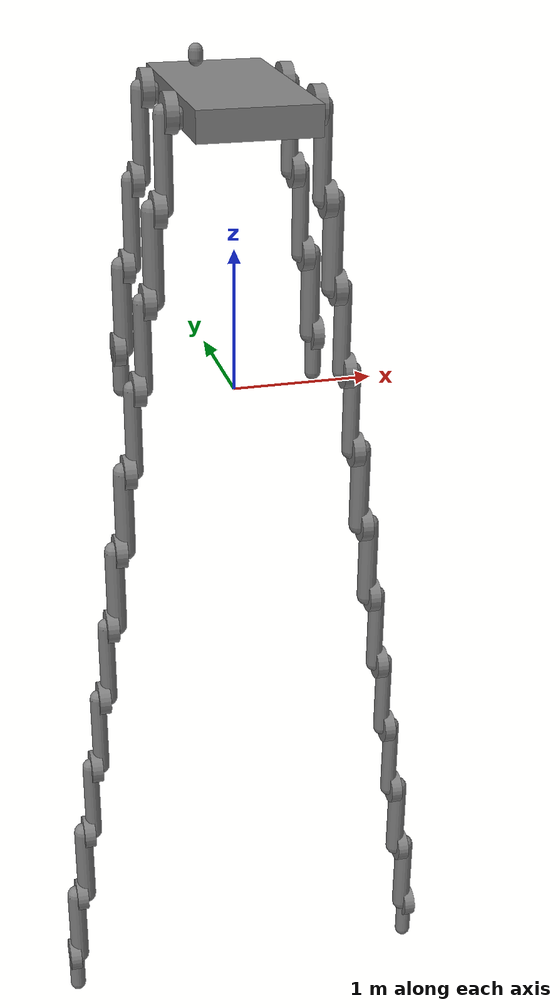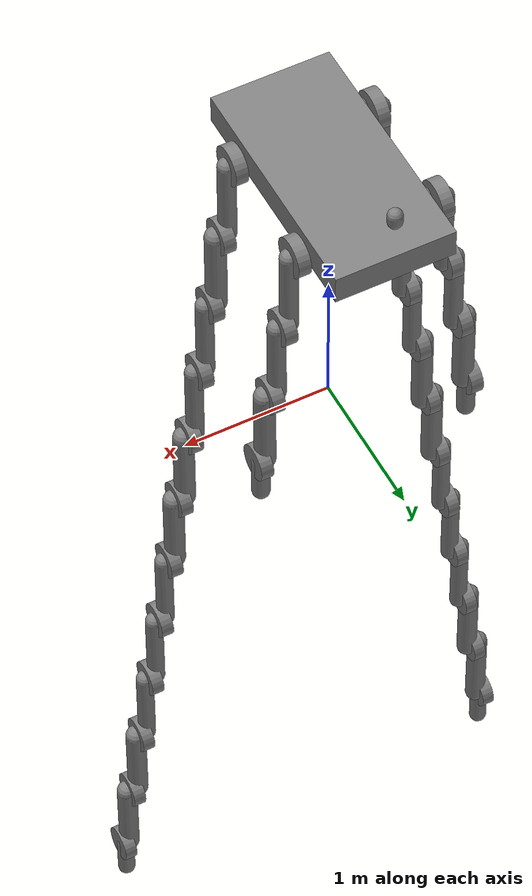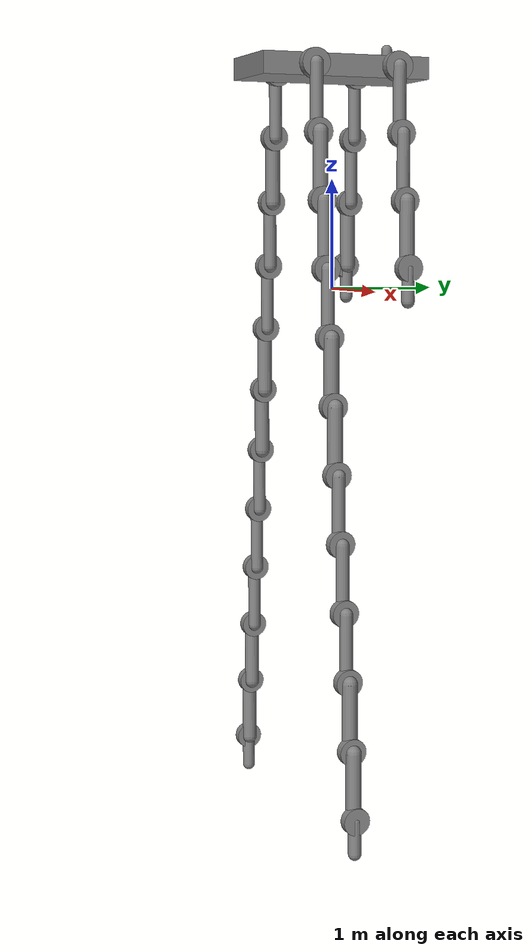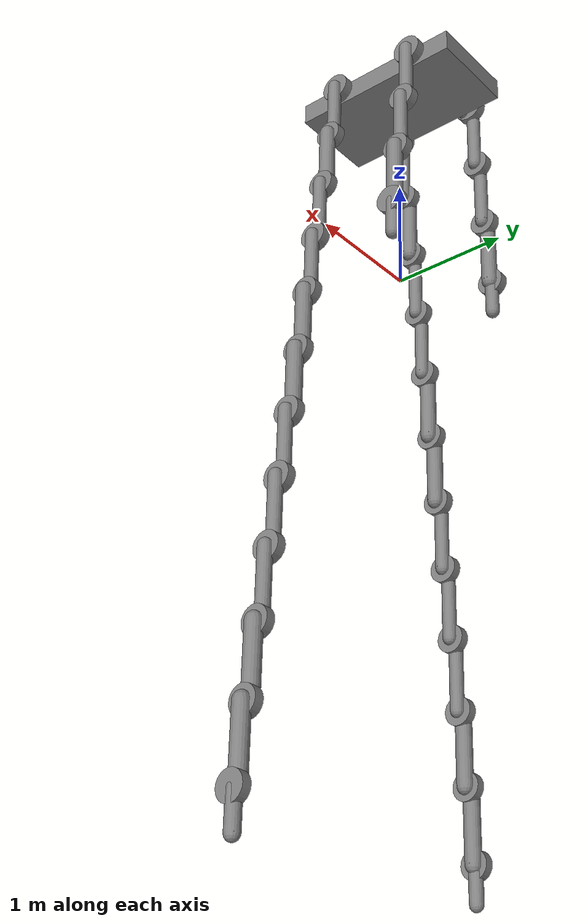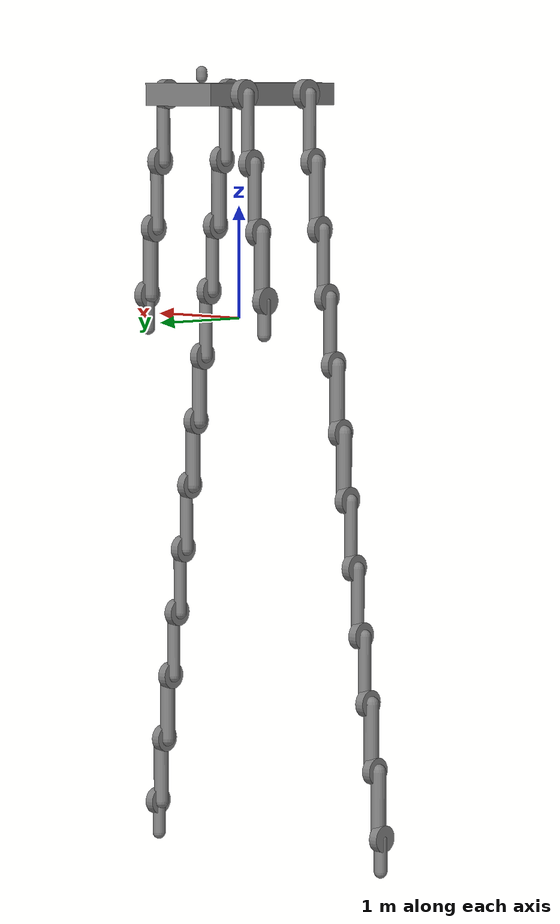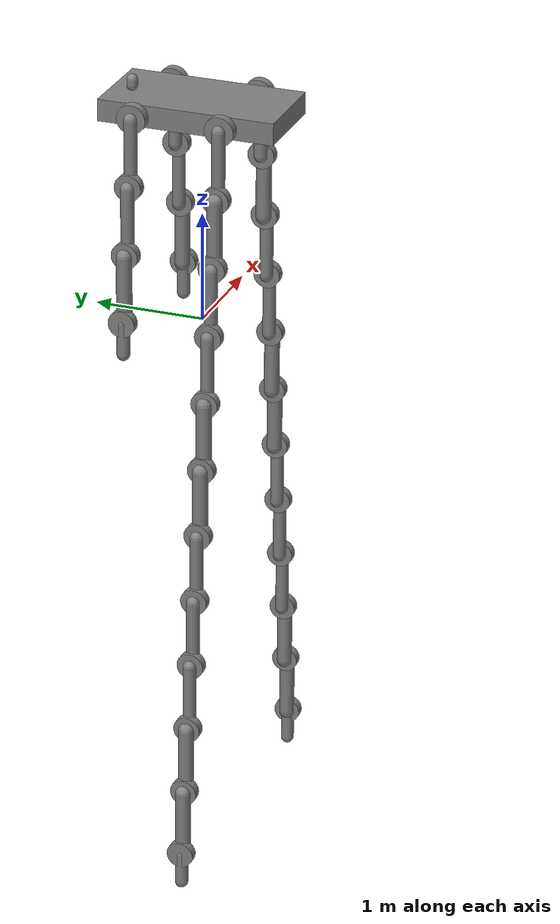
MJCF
<mujoco model="xmlrobot20_0_0">
	<compiler inertiafromgeom="true" />
	<option gravity="0 0 -9.8" />
	<size nconmax="500" njmax="1000" />
	<custom />
	<default />
	<asset />
	<worldbody>
		<body name="root" pos="0 0 2" quat="1.0 0.0 0.0 0.0">
			<geom name="geomroot" pos="-0.02 0 0.07" quat="1.0 0.0 0.0 0.0" size="0.15 0.15 0.02" type="box" />
			<body name="body1" pos="0 0 0" quat="1.0 0.0 0.0 0.0">
				<geom name="geombody1" pos="-0.02 0 0" quat="1.0 0.0 0.0 0.0" size="0.4 0.8 0.1" type="box" />
				<joint axis="0 0 1" damping="1.0" limited="true" name="joint_joint1" pos="0 0 0" range="-5 5" stiffness="2.0" type="hinge" />
				<body name="hand_mount1" pos="-0.1175 0.6 0.2" quat="0.70711 0.0 0.70711 0.0">
					<geom fromto="0 0 0 0.05 0 0" name="geomhand_mount1" quat="1.0 0.0 0.0 0.0" size="0.05" type="capsule" />
					<joint axis="1 0 0" damping="1.0" limited="true" name="joint_joint6" pos="0 0 0" range="-180 180" stiffness="2.0" type="hinge" />
				</body>
				<body name="limbmount4" pos="0.42 -0.4 0" quat="0.70711 0.0 0.70711 0.0">
					<geom fromto="0 0 0 0.05 0 0" name="geomlimbmount4" quat="1.0 0.0 0.0 0.0" size="0.05" type="capsule" />
					<joint axis="0 1 0" damping="1.0" limited="true" name="joint_joint5" pos="0 0 0" range="-45 45" stiffness="2.0" type="hinge" />
					<body name="limbmount4_new_new" pos="0 0.05 0" quat="0.70711 0.0 -0.70711 0.0">
						<geom euler="0 0 0" fromto="0 0 0 0.084 0 0" name="geomlimbmount4_new_new" pos="0 0 0" size="0.132" type="cylinder" />
						<joint axis="1 0 0" damping="1.0" limited="true" name="joint_limbmount4_new" pos="0 0 0" range="-45 45" stiffness="2.0" type="hinge" />
						<body name="limbmount4_new_new_new_new" pos="0.084 0 0" quat="0.70711 0.0 0.70711 0.0">
							<geom fromto="0 0 0 0.6 0 0" name="geomlimbmount4_new_new_new_new" quat="1.0 0.0 0.0 0.0" size="0.06" type="capsule" />
							<joint axis="0 1 0" damping="1.0" limited="true" name="joint_limbmount4_new_new_new" pos="0 0 0" range="-45 45" stiffness="2.0" type="hinge" />
							<body name="limbmount4_new_new_new_new_new_new" pos="0.6 0 0" quat="0.70711 0.0 -0.70711 0.0">
								<geom euler="0 0 0" fromto="0 0 0 0.084 0 0" name="geomlimbmount4_new_new_new_new_new_new" pos="0 0 0" size="0.122" type="cylinder" />
								<joint axis="1 0 0" damping="1.0" limited="true" name="joint_limbmount4_new_new_new_new_new" pos="0 0 0" range="-45 45" stiffness="2.0" type="hinge" />
								<body name="limbmount4_new_new_new_new_new_new_new_new" pos="0.084 0 0" quat="0.70711 0.0 0.70711 0.0">
									<geom fromto="0 0 0 0.6 0 0" name="geomlimbmount4_new_new_new_new_new_new_new_new" quat="1.0 0.0 0.0 0.0" size="0.07" type="capsule" />
									<joint axis="0 1 0" damping="1.0" limited="true" name="joint_limbmount4_new_new_new_new_new_new_new" pos="0 0 0" range="-45 45" stiffness="2.0" type="hinge" />
									<body name="limbmount4_new_new_new_new_new_new_new_new_new_new" pos="0.6 0 0" quat="0.70711 0.0 -0.70711 0.0">
										<geom euler="0 0 0" fromto="0 0 0 0.084 0 0" name="geomlimbmount4_new_new_new_new_new_new_new_new_new_new" pos="0 0 0" size="0.122" type="cylinder" />
										<joint axis="1 0 0" damping="1.0" limited="true" name="joint_limbmount4_new_new_new_new_new_new_new_new_new" pos="0 0 0" range="-45 45" stiffness="2.0" type="hinge" />
										<body name="limbmount4_new_new_new_new_new_new_new_new_new_new_new_new" pos="0.084 0 0" quat="0.70711 0.0 0.70711 0.0">
											<geom fromto="0 0 0 0.6 0 0" name="geomlimbmount4_new_new_new_new_new_new_new_new_new_new_new_new" quat="1.0 0.0 0.0 0.0" size="0.06" type="capsule" />
											<joint axis="0 1 0" damping="1.0" limited="true" name="joint_limbmount4_new_new_new_new_new_new_new_new_new_new_new" pos="0 0 0" range="-45 45" stiffness="2.0" type="hinge" />
											<body name="limbmount4_new_new_new_new_new_new_new_new_new_new_new_new_new_new" pos="0.6 0 0" quat="0.70711 0.0 -0.70711 0.0">
												<geom euler="0 0 0" fromto="0 0 0 0.084 0 0" name="geomlimbmount4_new_new_new_new_new_new_new_new_new_new_new_new_new_new" pos="0 0 0" size="0.122" type="cylinder" />
												<joint axis="1 0 0" damping="1.0" limited="true" name="joint_limbmount4_new_new_new_new_new_new_new_new_new_new_new_new_new" pos="0 0 0" range="-45 45" stiffness="2.0" type="hinge" />
												<body name="limbmount4_new_new_new_new_new_new_new_new_new_new_new_new_new_new_new_new" pos="0.084 0 0" quat="0.70711 0.0 0.70711 0.0">
													<geom fromto="0 0 0 0.6 0 0" name="geomlimbmount4_new_new_new_new_new_new_new_new_new_new_new_new_new_new_new_new" quat="1.0 0.0 0.0 0.0" size="0.06" type="capsule" />
													<joint axis="0 1 0" damping="1.0" limited="true" name="joint_limbmount4_new_new_new_new_new_new_new_new_new_new_new_new_new_new_new" pos="0 0 0" range="-45 45" stiffness="2.0" type="hinge" />
													<body name="limbmount4_new_new_new_new_new_new_new_new_new_new_new_new_new_new_new_new_new_new" pos="0.6 0 0" quat="0.70711 0.0 -0.70711 0.0">
														<geom euler="0 0 0" fromto="0 0 0 0.084 0 0" name="geomlimbmount4_new_new_new_new_new_new_new_new_new_new_new_new_new_new_new_new_new_new" pos="0 0 0" size="0.122" type="cylinder" />
														<joint axis="1 0 0" damping="1.0" limited="true" name="joint_limbmount4_new_new_new_new_new_new_new_new_new_new_new_new_new_new_new_new_new" pos="0 0 0" range="-45 45" stiffness="2.0" type="hinge" />
														<body name="limbmount4_new_new_new_new_new_new_new_new_new_new_new_new_new_new_new_new_new_new_new_new" pos="0.084 0 0" quat="0.70711 0.0 0.70711 0.0">
															<geom fromto="0 0 0 0.6 0 0" name="geomlimbmount4_new_new_new_new_new_new_new_new_new_new_new_new_new_new_new_new_new_new_new_new" quat="1.0 0.0 0.0 0.0" size="0.07" type="capsule" />
															<joint axis="0 1 0" damping="1.0" limited="true" name="joint_limbmount4_new_new_new_new_new_new_new_new_new_new_new_new_new_new_new_new_new_new_new" pos="0 0 0" range="-45 45" stiffness="2.0" type="hinge" />
															<body name="limbmount4_new_new_new_new_new_new_new_new_new_new_new_new_new_new_new_new_new_new_new_new_new_new" pos="0.6 0 0" quat="0.70711 0.0 -0.70711 0.0">
																<geom euler="0 0 0" fromto="0 0 0 0.084 0 0" name="geomlimbmount4_new_new_new_new_new_new_new_new_new_new_new_new_new_new_new_new_new_new_new_new_new_new" pos="0 0 0" size="0.122" type="cylinder" />
																<joint axis="1 0 0" damping="1.0" limited="true" name="joint_limbmount4_new_new_new_new_new_new_new_new_new_new_new_new_new_new_new_new_new_new_new_new_new" pos="0 0 0" range="-45 45" stiffness="2.0" type="hinge" />
																<body name="limbmount4_new_new_new_new_new_new_new_new_new_new_new_new_new_new_new_new_new_new_new_new_new_new_new_new" pos="0.084 0 0" quat="0.70711 0.0 0.70711 0.0">
																	<geom fromto="0 0 0 0.6 0 0" name="geomlimbmount4_new_new_new_new_new_new_new_new_new_new_new_new_new_new_new_new_new_new_new_new_new_new_new_new" quat="1.0 0.0 0.0 0.0" size="0.07" type="capsule" />
																	<joint axis="0 1 0" damping="1.0" limited="true" name="joint_limbmount4_new_new_new_new_new_new_new_new_new_new_new_new_new_new_new_new_new_new_new_new_new_new_new" pos="0 0 0" range="-45 45" stiffness="2.0" type="hinge" />
																	<body name="limbmount4_new_new_new_new_new_new_new_new_new_new_new_new_new_new_new_new_new_new_new_new_new_new_new_new_new_new" pos="0.6 0 0" quat="0.70711 0.0 -0.70711 0.0">
																		<geom euler="0 0 0" fromto="0 0 0 0.084 0 0" name="geomlimbmount4_new_new_new_new_new_new_new_new_new_new_new_new_new_new_new_new_new_new_new_new_new_new_new_new_new_new" pos="0 0 0" size="0.122" type="cylinder" />
																		<joint axis="1 0 0" damping="1.0" limited="true" name="joint_limbmount4_new_new_new_new_new_new_new_new_new_new_new_new_new_new_new_new_new_new_new_new_new_new_new_new_new" pos="0 0 0" range="-45 45" stiffness="2.0" type="hinge" />
																		<body name="limbmount4_new_new_new_new_new_new_new_new_new_new_new_new_new_new_new_new_new_new_new_new_new_new_new_new_new_new_new_new" pos="0.084 0 0" quat="0.70711 0.0 0.70711 0.0">
																			<geom fromto="0 0 0 0.6 0 0" name="geomlimbmount4_new_new_new_new_new_new_new_new_new_new_new_new_new_new_new_new_new_new_new_new_new_new_new_new_new_new_new_new" quat="1.0 0.0 0.0 0.0" size="0.06" type="capsule" />
																			<joint axis="0 1 0" damping="1.0" limited="true" name="joint_limbmount4_new_new_new_new_new_new_new_new_new_new_new_new_new_new_new_new_new_new_new_new_new_new_new_new_new_new_new" pos="0 0 0" range="-45 45" stiffness="2.0" type="hinge" />
																			<body name="limbmount4_new_new_new_new_new_new_new_new_new_new_new_new_new_new_new_new_new_new_new_new_new_new_new_new_new_new_new_new_new_new" pos="0.6 0 0" quat="0.70711 0.0 -0.70711 0.0">
																				<geom euler="0 0 0" fromto="0 0 0 0.084 0 0" name="geomlimbmount4_new_new_new_new_new_new_new_new_new_new_new_new_new_new_new_new_new_new_new_new_new_new_new_new_new_new_new_new_new_new" pos="0 0 0" size="0.122" type="cylinder" />
																				<joint axis="1 0 0" damping="1.0" limited="true" name="joint_limbmount4_new_new_new_new_new_new_new_new_new_new_new_new_new_new_new_new_new_new_new_new_new_new_new_new_new_new_new_new_new" pos="0 0 0" range="-45 45" stiffness="2.0" type="hinge" />
																				<body name="limbmount4_new_new_new_new_new_new_new_new_new_new_new_new_new_new_new_new_new_new_new_new_new_new_new_new_new_new_new_new_new_new_new_new" pos="0.084 0 0" quat="0.70711 0.0 0.70711 0.0">
																					<geom fromto="0 0 0 0.6 0 0" name="geomlimbmount4_new_new_new_new_new_new_new_new_new_new_new_new_new_new_new_new_new_new_new_new_new_new_new_new_new_new_new_new_new_new_new_new" quat="1.0 0.0 0.0 0.0" size="0.06" type="capsule" />
																					<joint axis="0 1 0" damping="1.0" limited="true" name="joint_limbmount4_new_new_new_new_new_new_new_new_new_new_new_new_new_new_new_new_new_new_new_new_new_new_new_new_new_new_new_new_new_new_new" pos="0 0 0" range="-45 45" stiffness="2.0" type="hinge" />
																					<body name="limbmount4_new_new_new_new_new_new_new_new_new_new_new_new_new_new_new_new_new_new_new_new_new_new_new_new_new_new_new_new_new_new_new_new_new_new" pos="0.6 0 0" quat="0.70711 0.0 -0.70711 0.0">
																						<geom euler="0 0 0" fromto="0 0 0 0.084 0 0" name="geomlimbmount4_new_new_new_new_new_new_new_new_new_new_new_new_new_new_new_new_new_new_new_new_new_new_new_new_new_new_new_new_new_new_new_new_new_new" pos="0 0 0" size="0.122" type="cylinder" />
																						<joint axis="1 0 0" damping="1.0" limited="true" name="joint_limbmount4_new_new_new_new_new_new_new_new_new_new_new_new_new_new_new_new_new_new_new_new_new_new_new_new_new_new_new_new_new_new_new_new_new" pos="0 0 0" range="-45 45" stiffness="2.0" type="hinge" />
																						<body name="limbmount4_new_new_new_new_new_new_new_new_new_new_new_new_new_new_new_new_new_new_new_new_new_new_new_new_new_new_new_new_new_new_new_new_new_new_new_new" pos="0.084 0 0" quat="0.70711 0.0 0.70711 0.0">
																							<geom fromto="0 0 0 0.6 0 0" name="geomlimbmount4_new_new_new_new_new_new_new_new_new_new_new_new_new_new_new_new_new_new_new_new_new_new_new_new_new_new_new_new_new_new_new_new_new_new_new_new" quat="1.0 0.0 0.0 0.0" size="0.06" type="capsule" />
																							<joint axis="0 1 0" damping="1.0" limited="true" name="joint_limbmount4_new_new_new_new_new_new_new_new_new_new_new_new_new_new_new_new_new_new_new_new_new_new_new_new_new_new_new_new_new_new_new_new_new_new_new" pos="0 0 0" range="-45 45" stiffness="2.0" type="hinge" />
																							<body name="limbmount4_new_new_new_new_new_new_new_new_new_new_new_new_new_new_new_new_new_new_new_new_new_new_new_new_new_new_new_new_new_new_new_new_new_new_new_new_new_new" pos="0.6 0 0" quat="0.70711 0.0 -0.70711 0.0">
																								<geom euler="0 0 0" fromto="0 0 0 0.084 0 0" name="geomlimbmount4_new_new_new_new_new_new_new_new_new_new_new_new_new_new_new_new_new_new_new_new_new_new_new_new_new_new_new_new_new_new_new_new_new_new_new_new_new_new" pos="0 0 0" size="0.122" type="cylinder" />
																								<joint axis="1 0 0" damping="1.0" limited="true" name="joint_limbmount4_new_new_new_new_new_new_new_new_new_new_new_new_new_new_new_new_new_new_new_new_new_new_new_new_new_new_new_new_new_new_new_new_new_new_new_new_new" pos="0 0 0" range="-45 45" stiffness="2.0" type="hinge" />
																								<body name="limbmount4_new_new_new_new_new_new_new_new_new_new_new_new_new_new_new_new_new_new_new_new_new_new_new_new_new_new_new_new_new_new_new_new_new_new_new_new_new_new_new_new" pos="0.084 0 0" quat="0.70711 0.0 0.70711 0.0">
																									<geom fromto="0 0 0 0.6 0 0" name="geomlimbmount4_new_new_new_new_new_new_new_new_new_new_new_new_new_new_new_new_new_new_new_new_new_new_new_new_new_new_new_new_new_new_new_new_new_new_new_new_new_new_new_new" quat="1.0 0.0 0.0 0.0" size="0.07" type="capsule" />
																									<joint axis="0 1 0" damping="1.0" limited="true" name="joint_limbmount4_new_new_new_new_new_new_new_new_new_new_new_new_new_new_new_new_new_new_new_new_new_new_new_new_new_new_new_new_new_new_new_new_new_new_new_new_new_new_new" pos="0 0 0" range="-45 45" stiffness="2.0" type="hinge" />
																									<body name="limbmount4_new_new_new_new_new_new_new_new_new_new_new_new_new_new_new_new_new_new_new_new_new_new_new_new_new_new_new_new_new_new_new_new_new_new_new_new_new_new_new_new_new_new" pos="0.6 0 0" quat="0.70711 0.0 -0.70711 0.0">
																										<geom euler="0 0 0" fromto="0 0 0 0.084 0 0" name="geomlimbmount4_new_new_new_new_new_new_new_new_new_new_new_new_new_new_new_new_new_new_new_new_new_new_new_new_new_new_new_new_new_new_new_new_new_new_new_new_new_new_new_new_new_new" pos="0 0 0" size="0.122" type="cylinder" />
																										<joint axis="1 0 0" damping="1.0" limited="true" name="joint_limbmount4_new_new_new_new_new_new_new_new_new_new_new_new_new_new_new_new_new_new_new_new_new_new_new_new_new_new_new_new_new_new_new_new_new_new_new_new_new_new_new_new_new" pos="0 0 0" range="-45 45" stiffness="2.0" type="hinge" />
																										<body name="limbmount4_new_new_new_new_new_new_new_new_new_new_new_new_new_new_new_new_new_new_new_new_new_new_new_new_new_new_new_new_new_new_new_new_new_new_new_new_new_new_new_new_new_new_new_new" pos="0.084 0 0" quat="0.70711 0.0 0.70711 0.0">
																											<geom fromto="0 0 0 0.6 0 0" name="geomlimbmount4_new_new_new_new_new_new_new_new_new_new_new_new_new_new_new_new_new_new_new_new_new_new_new_new_new_new_new_new_new_new_new_new_new_new_new_new_new_new_new_new_new_new_new_new" quat="1.0 0.0 0.0 0.0" size="0.07" type="capsule" />
																											<joint axis="0 1 0" damping="1.0" limited="true" name="joint_limbmount4_new_new_new_new_new_new_new_new_new_new_new_new_new_new_new_new_new_new_new_new_new_new_new_new_new_new_new_new_new_new_new_new_new_new_new_new_new_new_new_new_new_new_new" pos="0 0 0" range="-45 45" stiffness="2.0" type="hinge" />
																											<body name="limbmount4_new_new_new_new_new_new_new_new_new_new_new_new_new_new_new_new_new_new_new_new_new_new_new_new_new_new_new_new_new_new_new_new_new_new_new_new_new_new_new_new_new_new_new_new_new_new" pos="0.6 0 0" quat="0.70711 0.0 -0.70711 0.0">
																												<geom euler="0 0 0" fromto="0 0 0 0.084 0 0" name="geomlimbmount4_new_new_new_new_new_new_new_new_new_new_new_new_new_new_new_new_new_new_new_new_new_new_new_new_new_new_new_new_new_new_new_new_new_new_new_new_new_new_new_new_new_new_new_new_new_new" pos="0 0 0" size="0.122" type="cylinder" />
																												<joint axis="1 0 0" damping="1.0" limited="true" name="joint_limbmount4_new_new_new_new_new_new_new_new_new_new_new_new_new_new_new_new_new_new_new_new_new_new_new_new_new_new_new_new_new_new_new_new_new_new_new_new_new_new_new_new_new_new_new_new_new" pos="0 0 0" range="-45 45" stiffness="2.0" type="hinge" />
																												<body name="limbmount4_new_new_new_new_new_new_new_new_new_new_new_new_new_new_new_new_new_new_new_new_new_new_new_new_new_new_new_new_new_new_new_new_new_new_new_new_new_new_new_new_new_new_new_new_new_new_new_new" pos="0.03 0 0" quat="0.70711 0.0 0.70711 0.0">
																													<geom fromto="0 0 0 0.3 0 0" name="geomlimbmount4_new_new_new_new_new_new_new_new_new_new_new_new_new_new_new_new_new_new_new_new_new_new_new_new_new_new_new_new_new_new_new_new_new_new_new_new_new_new_new_new_new_new_new_new_new_new_new_new" quat="1.0 0.0 0.0 0.0" size="0.06" type="capsule" />
																													<joint axis="0 1 0" damping="1.0" limited="true" name="joint_limbmount4_new_new_new_new_new_new_new_new_new_new_new_new_new_new_new_new_new_new_new_new_new_new_new_new_new_new_new_new_new_new_new_new_new_new_new_new_new_new_new_new_new_new_new_new_new_new_new" pos="0 0 0" range="-45 45" stiffness="2.0" type="hinge" />
																												</body>
																											</body>
																										</body>
																									</body>
																								</body>
																							</body>
																						</body>
																					</body>
																				</body>
																			</body>
																		</body>
																	</body>
																</body>
															</body>
														</body>
													</body>
												</body>
											</body>
										</body>
									</body>
								</body>
							</body>
						</body>
					</body>
				</body>
				<body name="limbmount3" pos="-0.45 -0.4 0" quat="0.70711 0.0 0.70711 0.0">
					<geom fromto="0 0 0 0.05 0 0" name="geomlimbmount3" quat="-6.123233995736766e-17 1.0 0.0 0.0" size="0.05" type="capsule" />
					<joint axis="0 1 0" damping="1.0" limited="true" name="joint_joint4" pos="0 0 0" range="-45 45" stiffness="2.0" type="hinge" />
					<body name="motor2" pos="0 0.05 0" quat="-4.329780281177467e-17 0.7071067811865475 4.329780281177467e-17 -0.7071067811865477">
						<geom euler="0 0 0" fromto="0 0 0 0.084 0 0" name="geommotor2" pos="0 0 0" size="0.132" type="cylinder" />
						<joint axis="1 0 0" damping="1.0" limited="true" name="joint_joint9" pos="0 0 0" range="-45 45" stiffness="2.0" type="hinge" />
						<body name="limblink3" pos="0.084 0 0" quat="0.70711 0.0 0.70711 0.0">
							<geom fromto="0 0 0 0.6 0 0" name="geomlimblink3" quat="1.0 0.0 0.0 0.0" size="0.06" type="capsule" />
							<joint axis="0 1 0" damping="1.0" limited="true" name="joint_joint12" pos="0 0 0" range="-45 45" stiffness="2.0" type="hinge" />
							<body name="motor_link_end4" pos="0.6 0 0" quat="0.70711 0.0 -0.70711 0.0">
								<geom euler="0 0 0" fromto="0 0 0 0.084 0 0" name="geommotor_link_end4" pos="0 0 0" size="0.122" type="cylinder" />
								<joint axis="1 0 0" damping="1.0" limited="true" name="joint_joint17" pos="0 0 0" range="-45 45" stiffness="2.0" type="hinge" />
								<body name="limblink6" pos="0.084 0 0" quat="0.70711 0.0 0.70711 0.0">
									<geom fromto="0 0 0 0.6 0 0" name="geomlimblink6" quat="1.0 0.0 0.0 0.0" size="0.07" type="capsule" />
									<joint axis="0 1 0" damping="1.0" limited="true" name="joint_joint18" pos="0 0 0" range="-45 45" stiffness="2.0" type="hinge" />
									<body name="motor_link_end5" pos="0.6 0 0" quat="0.70711 0.0 -0.70711 0.0">
										<geom euler="0 0 0" fromto="0 0 0 0.084 0 0" name="geommotor_link_end5" pos="0 0 0" size="0.122" type="cylinder" />
										<joint axis="1 0 0" damping="1.0" limited="true" name="joint_joint19" pos="0 0 0" range="-45 45" stiffness="2.0" type="hinge" />
										<body name="limblink7" pos="0.084 0 0" quat="0.70711 0.0 0.70711 0.0">
											<geom fromto="0 0 0 0.6 0 0" name="geomlimblink7" quat="1.0 0.0 0.0 0.0" size="0.06" type="capsule" />
											<joint axis="0 1 0" damping="1.0" limited="true" name="joint_joint20" pos="0 0 0" range="-45 45" stiffness="2.0" type="hinge" />
											<body name="motor_link_end6" pos="0.6 0 0" quat="0.70711 0.0 -0.70711 0.0">
												<geom euler="0 0 0" fromto="0 0 0 0.084 0 0" name="geommotor_link_end6" pos="0 0 0" size="0.122" type="cylinder" />
												<joint axis="1 0 0" damping="1.0" limited="true" name="joint_joint21" pos="0 0 0" range="-45 45" stiffness="2.0" type="hinge" />
												<body name="limblink8" pos="0.084 0 0" quat="0.70711 0.0 0.70711 0.0">
													<geom fromto="0 0 0 0.6 0 0" name="geomlimblink8" quat="1.0 0.0 0.0 0.0" size="0.06" type="capsule" />
													<joint axis="0 1 0" damping="1.0" limited="true" name="joint_joint22" pos="0 0 0" range="-45 45" stiffness="2.0" type="hinge" />
													<body name="motor_link_end7" pos="0.6 0 0" quat="0.70711 0.0 -0.70711 0.0">
														<geom euler="0 0 0" fromto="0 0 0 0.084 0 0" name="geommotor_link_end7" pos="0 0 0" size="0.122" type="cylinder" />
														<joint axis="1 0 0" damping="1.0" limited="true" name="joint_joint23" pos="0 0 0" range="-45 45" stiffness="2.0" type="hinge" />
														<body name="limblink9" pos="0.084 0 0" quat="0.70711 0.0 0.70711 0.0">
															<geom fromto="0 0 0 0.6 0 0" name="geomlimblink9" quat="1.0 0.0 0.0 0.0" size="0.07" type="capsule" />
															<joint axis="0 1 0" damping="1.0" limited="true" name="joint_joint24" pos="0 0 0" range="-45 45" stiffness="2.0" type="hinge" />
															<body name="motor_link_end8" pos="0.6 0 0" quat="0.70711 0.0 -0.70711 0.0">
																<geom euler="0 0 0" fromto="0 0 0 0.084 0 0" name="geommotor_link_end8" pos="0 0 0" size="0.122" type="cylinder" />
																<joint axis="1 0 0" damping="1.0" limited="true" name="joint_joint25" pos="0 0 0" range="-45 45" stiffness="2.0" type="hinge" />
																<body name="limblink10" pos="0.084 0 0" quat="0.70711 0.0 0.70711 0.0">
																	<geom fromto="0 0 0 0.6 0 0" name="geomlimblink10" quat="1.0 0.0 0.0 0.0" size="0.07" type="capsule" />
																	<joint axis="0 1 0" damping="1.0" limited="true" name="joint_joint26" pos="0 0 0" range="-45 45" stiffness="2.0" type="hinge" />
																	<body name="motor_link_end9" pos="0.6 0 0" quat="0.70711 0.0 -0.70711 0.0">
																		<geom euler="0 0 0" fromto="0 0 0 0.084 0 0" name="geommotor_link_end9" pos="0 0 0" size="0.122" type="cylinder" />
																		<joint axis="1 0 0" damping="1.0" limited="true" name="joint_joint27" pos="0 0 0" range="-45 45" stiffness="2.0" type="hinge" />
																		<body name="limblink11" pos="0.084 0 0" quat="0.70711 0.0 0.70711 0.0">
																			<geom fromto="0 0 0 0.6 0 0" name="geomlimblink11" quat="1.0 0.0 0.0 0.0" size="0.06" type="capsule" />
																			<joint axis="0 1 0" damping="1.0" limited="true" name="joint_joint28" pos="0 0 0" range="-45 45" stiffness="2.0" type="hinge" />
																			<body name="motor_link_end10" pos="0.6 0 0" quat="0.70711 0.0 -0.70711 0.0">
																				<geom euler="0 0 0" fromto="0 0 0 0.084 0 0" name="geommotor_link_end10" pos="0 0 0" size="0.122" type="cylinder" />
																				<joint axis="1 0 0" damping="1.0" limited="true" name="joint_joint29" pos="0 0 0" range="-45 45" stiffness="2.0" type="hinge" />
																				<body name="limblink12" pos="0.084 0 0" quat="0.70711 0.0 0.70711 0.0">
																					<geom fromto="0 0 0 0.6 0 0" name="geomlimblink12" quat="1.0 0.0 0.0 0.0" size="0.06" type="capsule" />
																					<joint axis="0 1 0" damping="1.0" limited="true" name="joint_joint30" pos="0 0 0" range="-45 45" stiffness="2.0" type="hinge" />
																					<body name="motor_link_end11" pos="0.6 0 0" quat="0.70711 0.0 -0.70711 0.0">
																						<geom euler="0 0 0" fromto="0 0 0 0.084 0 0" name="geommotor_link_end11" pos="0 0 0" size="0.122" type="cylinder" />
																						<joint axis="1 0 0" damping="1.0" limited="true" name="joint_joint31" pos="0 0 0" range="-45 45" stiffness="2.0" type="hinge" />
																						<body name="limblink13" pos="0.084 0 0" quat="0.70711 0.0 0.70711 0.0">
																							<geom fromto="0 0 0 0.6 0 0" name="geomlimblink13" quat="1.0 0.0 0.0 0.0" size="0.06" type="capsule" />
																							<joint axis="0 1 0" damping="1.0" limited="true" name="joint_joint32" pos="0 0 0" range="-45 45" stiffness="2.0" type="hinge" />
																							<body name="motor_link_end12" pos="0.6 0 0" quat="0.70711 0.0 -0.70711 0.0">
																								<geom euler="0 0 0" fromto="0 0 0 0.084 0 0" name="geommotor_link_end12" pos="0 0 0" size="0.122" type="cylinder" />
																								<joint axis="1 0 0" damping="1.0" limited="true" name="joint_joint33" pos="0 0 0" range="-45 45" stiffness="2.0" type="hinge" />
																								<body name="limblink14" pos="0.084 0 0" quat="0.70711 0.0 0.70711 0.0">
																									<geom fromto="0 0 0 0.6 0 0" name="geomlimblink14" quat="1.0 0.0 0.0 0.0" size="0.07" type="capsule" />
																									<joint axis="0 1 0" damping="1.0" limited="true" name="joint_joint34" pos="0 0 0" range="-45 45" stiffness="2.0" type="hinge" />
																									<body name="motor_link_end13" pos="0.6 0 0" quat="0.70711 0.0 -0.70711 0.0">
																										<geom euler="0 0 0" fromto="0 0 0 0.084 0 0" name="geommotor_link_end13" pos="0 0 0" size="0.122" type="cylinder" />
																										<joint axis="1 0 0" damping="1.0" limited="true" name="joint_joint35" pos="0 0 0" range="-45 45" stiffness="2.0" type="hinge" />
																										<body name="limblink15" pos="0.084 0 0" quat="0.70711 0.0 0.70711 0.0">
																											<geom fromto="0 0 0 0.6 0 0" name="geomlimblink15" quat="1.0 0.0 0.0 0.0" size="0.07" type="capsule" />
																											<joint axis="0 1 0" damping="1.0" limited="true" name="joint_joint36" pos="0 0 0" range="-45 45" stiffness="2.0" type="hinge" />
																											<body name="motor_link_end14" pos="0.6 0 0" quat="0.70711 0.0 -0.70711 0.0">
																												<geom euler="0 0 0" fromto="0 0 0 0.084 0 0" name="geommotor_link_end14" pos="0 0 0" size="0.122" type="cylinder" />
																												<joint axis="1 0 0" damping="1.0" limited="true" name="joint_joint37" pos="0 0 0" range="-45 45" stiffness="2.0" type="hinge" />
																												<body name="short_limblink2" pos="0.03 0 0" quat="0.70711 0.0 0.70711 0.0">
																													<geom fromto="0 0 0 0.3 0 0" name="geomshort_limblink2" quat="1.0 0.0 0.0 0.0" size="0.06" type="capsule" />
																													<joint axis="0 1 0" damping="1.0" limited="true" name="joint_joint38" pos="0 0 0" range="-45 45" stiffness="2.0" type="hinge" />
																												</body>
																											</body>
																										</body>
																									</body>
																								</body>
																							</body>
																						</body>
																					</body>
																				</body>
																			</body>
																		</body>
																	</body>
																</body>
															</body>
														</body>
													</body>
												</body>
											</body>
										</body>
									</body>
								</body>
							</body>
						</body>
					</body>
				</body>
				<body name="limbmount2" pos="-0.45 0.4 0" quat="0.70711 0.0 0.70711 0.0">
					<geom fromto="0 0 0 0.05 0 0" name="geomlimbmount2" quat="-6.123233995736766e-17 1.0 0.0 0.0" size="0.05" type="capsule" />
					<joint axis="0 1 0" damping="1.0" limited="true" name="joint_joint3" pos="0 0 0" range="-45 45" stiffness="2.0" type="hinge" />
					<body name="limbmount2_new_new" pos="0 0.05 0" quat="-4.329780281177467e-17 0.7071067811865475 4.329780281177467e-17 -0.7071067811865477">
						<geom euler="0 0 0" fromto="0 0 0 0.084 0 0" name="geomlimbmount2_new_new" pos="0 0 0" size="0.132" type="cylinder" />
						<joint axis="1 0 0" damping="1.0" limited="true" name="joint_limbmount2_new" pos="0 0 0" range="-45 45" stiffness="2.0" type="hinge" />
						<body name="limbmount2_new_new_new_new" pos="0.084 0 0" quat="0.70711 0.0 0.70711 0.0">
							<geom fromto="0 0 0 0.6 0 0" name="geomlimbmount2_new_new_new_new" quat="1.0 0.0 0.0 0.0" size="0.06" type="capsule" />
							<joint axis="0 1 0" damping="1.0" limited="true" name="joint_limbmount2_new_new_new" pos="0 0 0" range="-45 45" stiffness="2.0" type="hinge" />
							<body name="limbmount2_new_new_new_new_new_new" pos="0.6 0 0" quat="0.70711 0.0 -0.70711 0.0">
								<geom euler="0 0 0" fromto="0 0 0 0.084 0 0" name="geomlimbmount2_new_new_new_new_new_new" pos="0 0 0" size="0.122" type="cylinder" />
								<joint axis="1 0 0" damping="1.0" limited="true" name="joint_limbmount2_new_new_new_new_new" pos="0 0 0" range="-45 45" stiffness="2.0" type="hinge" />
								<body name="limbmount2_new_new_new_new_new_new_new_new" pos="0.084 0 0" quat="0.70711 0.0 0.70711 0.0">
									<geom fromto="0 0 0 0.6 0 0" name="geomlimbmount2_new_new_new_new_new_new_new_new" quat="1.0 0.0 0.0 0.0" size="0.06" type="capsule" />
									<joint axis="0 1 0" damping="1.0" limited="true" name="joint_limbmount2_new_new_new_new_new_new_new" pos="0 0 0" range="-45 45" stiffness="2.0" type="hinge" />
									<body name="limbmount2_new_new_new_new_new_new_new_new_new_new" pos="0.6 0 0" quat="0.70711 0.0 -0.70711 0.0">
										<geom euler="0 0 0" fromto="0 0 0 0.084 0 0" name="geomlimbmount2_new_new_new_new_new_new_new_new_new_new" pos="0 0 0" size="0.122" type="cylinder" />
										<joint axis="1 0 0" damping="1.0" limited="true" name="joint_limbmount2_new_new_new_new_new_new_new_new_new" pos="0 0 0" range="-45 45" stiffness="2.0" type="hinge" />
										<body name="limbmount2_new_new_new_new_new_new_new_new_new_new_new_new" pos="0.084 0 0" quat="0.70711 0.0 0.70711 0.0">
											<geom fromto="0 0 0 0.6 0 0" name="geomlimbmount2_new_new_new_new_new_new_new_new_new_new_new_new" quat="1.0 0.0 0.0 0.0" size="0.07" type="capsule" />
											<joint axis="0 1 0" damping="1.0" limited="true" name="joint_limbmount2_new_new_new_new_new_new_new_new_new_new_new" pos="0 0 0" range="-45 45" stiffness="2.0" type="hinge" />
											<body name="limbmount2_new_new_new_new_new_new_new_new_new_new_new_new_new_new" pos="0.6 0 0" quat="0.70711 0.0 -0.70711 0.0">
												<geom euler="0 0 0" fromto="0 0 0 0.084 0 0" name="geomlimbmount2_new_new_new_new_new_new_new_new_new_new_new_new_new_new" pos="0 0 0" size="0.122" type="cylinder" />
												<joint axis="1 0 0" damping="1.0" limited="true" name="joint_limbmount2_new_new_new_new_new_new_new_new_new_new_new_new_new" pos="0 0 0" range="-45 45" stiffness="2.0" type="hinge" />
												<body name="limbmount2_new_new_new_new_new_new_new_new_new_new_new_new_new_new_new_new" pos="0.03 0 0" quat="0.70711 0.0 0.70711 0.0">
													<geom fromto="0 0 0 0.3 0 0" name="geomlimbmount2_new_new_new_new_new_new_new_new_new_new_new_new_new_new_new_new" quat="1.0 0.0 0.0 0.0" size="0.06" type="capsule" />
													<joint axis="0 1 0" damping="1.0" limited="true" name="joint_limbmount2_new_new_new_new_new_new_new_new_new_new_new_new_new_new_new" pos="0 0 0" range="-45 45" stiffness="2.0" type="hinge" />
												</body>
											</body>
										</body>
									</body>
								</body>
							</body>
						</body>
					</body>
				</body>
				<body name="limbmount1" pos="0.42 0.4 0" quat="0.70711 0.0 0.70711 0.0">
					<geom fromto="0 0 0 0.05 0 0" name="geomlimbmount1" quat="1.0 0.0 0.0 0.0" size="0.05" type="capsule" />
					<joint axis="0 1 0" damping="1.0" limited="true" name="joint_joint2" pos="0 0 0" range="-45 45" stiffness="2.0" type="hinge" />
					<body name="motor1" pos="0 0.05 0" quat="0.70711 0.0 -0.70711 0.0">
						<geom euler="0 0 0" fromto="0 0 0 0.084 0 0" name="geommotor1" pos="0 0 0" size="0.132" type="cylinder" />
						<joint axis="1 0 0" damping="1.0" limited="true" name="joint_joint7" pos="0 0 0" range="-45 45" stiffness="2.0" type="hinge" />
						<body name="limblink1" pos="0.084 0 0" quat="0.70711 0.0 0.70711 0.0">
							<geom fromto="0 0 0 0.6 0 0" name="geomlimblink1" quat="1.0 0.0 0.0 0.0" size="0.06" type="capsule" />
							<joint axis="0 1 0" damping="1.0" limited="true" name="joint_joint8" pos="0 0 0" range="-45 45" stiffness="2.0" type="hinge" />
							<body name="motor_link_end1" pos="0.6 0 0" quat="0.70711 0.0 -0.70711 0.0">
								<geom euler="0 0 0" fromto="0 0 0 0.084 0 0" name="geommotor_link_end1" pos="0 0 0" size="0.122" type="cylinder" />
								<joint axis="1 0 0" damping="1.0" limited="true" name="joint_joint10" pos="0 0 0" range="-45 45" stiffness="2.0" type="hinge" />
								<body name="limblink2" pos="0.084 0 0" quat="0.70711 0.0 0.70711 0.0">
									<geom fromto="0 0 0 0.6 0 0" name="geomlimblink2" quat="1.0 0.0 0.0 0.0" size="0.06" type="capsule" />
									<joint axis="0 1 0" damping="1.0" limited="true" name="joint_joint11" pos="0 0 0" range="-45 45" stiffness="2.0" type="hinge" />
									<body name="motor_link_end2" pos="0.6 0 0" quat="0.70711 0.0 -0.70711 0.0">
										<geom euler="0 0 0" fromto="0 0 0 0.084 0 0" name="geommotor_link_end2" pos="0 0 0" size="0.122" type="cylinder" />
										<joint axis="1 0 0" damping="1.0" limited="true" name="joint_joint13" pos="0 0 0" range="-45 45" stiffness="2.0" type="hinge" />
										<body name="limblink4" pos="0.084 0 0" quat="0.70711 0.0 0.70711 0.0">
											<geom fromto="0 0 0 0.6 0 0" name="geomlimblink4" quat="1.0 0.0 0.0 0.0" size="0.07" type="capsule" />
											<joint axis="0 1 0" damping="1.0" limited="true" name="joint_joint14" pos="0 0 0" range="-45 45" stiffness="2.0" type="hinge" />
											<body name="motor_link_end3" pos="0.6 0 0" quat="0.70711 0.0 -0.70711 0.0">
												<geom euler="0 0 0" fromto="0 0 0 0.084 0 0" name="geommotor_link_end3" pos="0 0 0" size="0.122" type="cylinder" />
												<joint axis="1 0 0" damping="1.0" limited="true" name="joint_joint15" pos="0 0 0" range="-45 45" stiffness="2.0" type="hinge" />
												<body name="short_limblink1" pos="0.03 0 0" quat="0.70711 0.0 0.70711 0.0">
													<geom fromto="0 0 0 0.3 0 0" name="geomshort_limblink1" quat="1.0 0.0 0.0 0.0" size="0.06" type="capsule" />
													<joint axis="0 1 0" damping="1.0" limited="true" name="joint_joint16" pos="0 0 0" range="-45 45" stiffness="2.0" type="hinge" />
												</body>
											</body>
										</body>
									</body>
								</body>
							</body>
						</body>
					</body>
				</body>
			</body>
		</body>
	</worldbody>
	<actuator>
		<motor ctrllimited="true" ctrlrange="-1 1" gear="22.5" joint="joint_joint1" />
		<motor ctrllimited="true" ctrlrange="-1 1" gear="22.5" joint="joint_joint6" />
		<motor ctrllimited="true" ctrlrange="-1 1" gear="22.5" joint="joint_joint5" />
		<motor ctrllimited="true" ctrlrange="-1 1" gear="22.5" joint="joint_limbmount4_new" />
		<motor ctrllimited="true" ctrlrange="-1 1" gear="22.5" joint="joint_limbmount4_new_new_new" />
		<motor ctrllimited="true" ctrlrange="-1 1" gear="22.5" joint="joint_limbmount4_new_new_new_new_new" />
		<motor ctrllimited="true" ctrlrange="-1 1" gear="22.5" joint="joint_limbmount4_new_new_new_new_new_new_new" />
		<motor ctrllimited="true" ctrlrange="-1 1" gear="22.5" joint="joint_limbmount4_new_new_new_new_new_new_new_new_new" />
		<motor ctrllimited="true" ctrlrange="-1 1" gear="22.5" joint="joint_limbmount4_new_new_new_new_new_new_new_new_new_new_new" />
		<motor ctrllimited="true" ctrlrange="-1 1" gear="22.5" joint="joint_limbmount4_new_new_new_new_new_new_new_new_new_new_new_new_new" />
		<motor ctrllimited="true" ctrlrange="-1 1" gear="22.5" joint="joint_limbmount4_new_new_new_new_new_new_new_new_new_new_new_new_new_new_new" />
		<motor ctrllimited="true" ctrlrange="-1 1" gear="22.5" joint="joint_limbmount4_new_new_new_new_new_new_new_new_new_new_new_new_new_new_new_new_new" />
		<motor ctrllimited="true" ctrlrange="-1 1" gear="22.5" joint="joint_limbmount4_new_new_new_new_new_new_new_new_new_new_new_new_new_new_new_new_new_new_new" />
		<motor ctrllimited="true" ctrlrange="-1 1" gear="22.5" joint="joint_limbmount4_new_new_new_new_new_new_new_new_new_new_new_new_new_new_new_new_new_new_new_new_new" />
		<motor ctrllimited="true" ctrlrange="-1 1" gear="22.5" joint="joint_limbmount4_new_new_new_new_new_new_new_new_new_new_new_new_new_new_new_new_new_new_new_new_new_new_new" />
		<motor ctrllimited="true" ctrlrange="-1 1" gear="22.5" joint="joint_limbmount4_new_new_new_new_new_new_new_new_new_new_new_new_new_new_new_new_new_new_new_new_new_new_new_new_new" />
		<motor ctrllimited="true" ctrlrange="-1 1" gear="22.5" joint="joint_limbmount4_new_new_new_new_new_new_new_new_new_new_new_new_new_new_new_new_new_new_new_new_new_new_new_new_new_new_new" />
		<motor ctrllimited="true" ctrlrange="-1 1" gear="22.5" joint="joint_limbmount4_new_new_new_new_new_new_new_new_new_new_new_new_new_new_new_new_new_new_new_new_new_new_new_new_new_new_new_new_new" />
		<motor ctrllimited="true" ctrlrange="-1 1" gear="22.5" joint="joint_limbmount4_new_new_new_new_new_new_new_new_new_new_new_new_new_new_new_new_new_new_new_new_new_new_new_new_new_new_new_new_new_new_new" />
		<motor ctrllimited="true" ctrlrange="-1 1" gear="22.5" joint="joint_limbmount4_new_new_new_new_new_new_new_new_new_new_new_new_new_new_new_new_new_new_new_new_new_new_new_new_new_new_new_new_new_new_new_new_new" />
		<motor ctrllimited="true" ctrlrange="-1 1" gear="22.5" joint="joint_limbmount4_new_new_new_new_new_new_new_new_new_new_new_new_new_new_new_new_new_new_new_new_new_new_new_new_new_new_new_new_new_new_new_new_new_new_new" />
		<motor ctrllimited="true" ctrlrange="-1 1" gear="22.5" joint="joint_limbmount4_new_new_new_new_new_new_new_new_new_new_new_new_new_new_new_new_new_new_new_new_new_new_new_new_new_new_new_new_new_new_new_new_new_new_new_new_new" />
		<motor ctrllimited="true" ctrlrange="-1 1" gear="22.5" joint="joint_limbmount4_new_new_new_new_new_new_new_new_new_new_new_new_new_new_new_new_new_new_new_new_new_new_new_new_new_new_new_new_new_new_new_new_new_new_new_new_new_new_new" />
		<motor ctrllimited="true" ctrlrange="-1 1" gear="22.5" joint="joint_limbmount4_new_new_new_new_new_new_new_new_new_new_new_new_new_new_new_new_new_new_new_new_new_new_new_new_new_new_new_new_new_new_new_new_new_new_new_new_new_new_new_new_new" />
		<motor ctrllimited="true" ctrlrange="-1 1" gear="22.5" joint="joint_limbmount4_new_new_new_new_new_new_new_new_new_new_new_new_new_new_new_new_new_new_new_new_new_new_new_new_new_new_new_new_new_new_new_new_new_new_new_new_new_new_new_new_new_new_new" />
		<motor ctrllimited="true" ctrlrange="-1 1" gear="22.5" joint="joint_limbmount4_new_new_new_new_new_new_new_new_new_new_new_new_new_new_new_new_new_new_new_new_new_new_new_new_new_new_new_new_new_new_new_new_new_new_new_new_new_new_new_new_new_new_new_new_new" />
		<motor ctrllimited="true" ctrlrange="-1 1" gear="22.5" joint="joint_limbmount4_new_new_new_new_new_new_new_new_new_new_new_new_new_new_new_new_new_new_new_new_new_new_new_new_new_new_new_new_new_new_new_new_new_new_new_new_new_new_new_new_new_new_new_new_new_new_new" />
		<motor ctrllimited="true" ctrlrange="-1 1" gear="22.5" joint="joint_joint4" />
		<motor ctrllimited="true" ctrlrange="-1 1" gear="22.5" joint="joint_joint9" />
		<motor ctrllimited="true" ctrlrange="-1 1" gear="22.5" joint="joint_joint12" />
		<motor ctrllimited="true" ctrlrange="-1 1" gear="22.5" joint="joint_joint17" />
		<motor ctrllimited="true" ctrlrange="-1 1" gear="22.5" joint="joint_joint18" />
		<motor ctrllimited="true" ctrlrange="-1 1" gear="22.5" joint="joint_joint19" />
		<motor ctrllimited="true" ctrlrange="-1 1" gear="22.5" joint="joint_joint20" />
		<motor ctrllimited="true" ctrlrange="-1 1" gear="22.5" joint="joint_joint21" />
		<motor ctrllimited="true" ctrlrange="-1 1" gear="22.5" joint="joint_joint22" />
		<motor ctrllimited="true" ctrlrange="-1 1" gear="22.5" joint="joint_joint23" />
		<motor ctrllimited="true" ctrlrange="-1 1" gear="22.5" joint="joint_joint24" />
		<motor ctrllimited="true" ctrlrange="-1 1" gear="22.5" joint="joint_joint25" />
		<motor ctrllimited="true" ctrlrange="-1 1" gear="22.5" joint="joint_joint26" />
		<motor ctrllimited="true" ctrlrange="-1 1" gear="22.5" joint="joint_joint27" />
		<motor ctrllimited="true" ctrlrange="-1 1" gear="22.5" joint="joint_joint28" />
		<motor ctrllimited="true" ctrlrange="-1 1" gear="22.5" joint="joint_joint29" />
		<motor ctrllimited="true" ctrlrange="-1 1" gear="22.5" joint="joint_joint30" />
		<motor ctrllimited="true" ctrlrange="-1 1" gear="22.5" joint="joint_joint31" />
		<motor ctrllimited="true" ctrlrange="-1 1" gear="22.5" joint="joint_joint32" />
		<motor ctrllimited="true" ctrlrange="-1 1" gear="22.5" joint="joint_joint33" />
		<motor ctrllimited="true" ctrlrange="-1 1" gear="22.5" joint="joint_joint34" />
		<motor ctrllimited="true" ctrlrange="-1 1" gear="22.5" joint="joint_joint35" />
		<motor ctrllimited="true" ctrlrange="-1 1" gear="22.5" joint="joint_joint36" />
		<motor ctrllimited="true" ctrlrange="-1 1" gear="22.5" joint="joint_joint37" />
		<motor ctrllimited="true" ctrlrange="-1 1" gear="22.5" joint="joint_joint38" />
		<motor ctrllimited="true" ctrlrange="-1 1" gear="22.5" joint="joint_joint3" />
		<motor ctrllimited="true" ctrlrange="-1 1" gear="22.5" joint="joint_limbmount2_new" />
		<motor ctrllimited="true" ctrlrange="-1 1" gear="22.5" joint="joint_limbmount2_new_new_new" />
		<motor ctrllimited="true" ctrlrange="-1 1" gear="22.5" joint="joint_limbmount2_new_new_new_new_new" />
		<motor ctrllimited="true" ctrlrange="-1 1" gear="22.5" joint="joint_limbmount2_new_new_new_new_new_new_new" />
		<motor ctrllimited="true" ctrlrange="-1 1" gear="22.5" joint="joint_limbmount2_new_new_new_new_new_new_new_new_new" />
		<motor ctrllimited="true" ctrlrange="-1 1" gear="22.5" joint="joint_limbmount2_new_new_new_new_new_new_new_new_new_new_new" />
		<motor ctrllimited="true" ctrlrange="-1 1" gear="22.5" joint="joint_limbmount2_new_new_new_new_new_new_new_new_new_new_new_new_new" />
		<motor ctrllimited="true" ctrlrange="-1 1" gear="22.5" joint="joint_limbmount2_new_new_new_new_new_new_new_new_new_new_new_new_new_new_new" />
		<motor ctrllimited="true" ctrlrange="-1 1" gear="22.5" joint="joint_joint2" />
		<motor ctrllimited="true" ctrlrange="-1 1" gear="22.5" joint="joint_joint7" />
		<motor ctrllimited="true" ctrlrange="-1 1" gear="22.5" joint="joint_joint8" />
		<motor ctrllimited="true" ctrlrange="-1 1" gear="22.5" joint="joint_joint10" />
		<motor ctrllimited="true" ctrlrange="-1 1" gear="22.5" joint="joint_joint11" />
		<motor ctrllimited="true" ctrlrange="-1 1" gear="22.5" joint="joint_joint13" />
		<motor ctrllimited="true" ctrlrange="-1 1" gear="22.5" joint="joint_joint14" />
		<motor ctrllimited="true" ctrlrange="-1 1" gear="22.5" joint="joint_joint15" />
		<motor ctrllimited="true" ctrlrange="-1 1" gear="22.5" joint="joint_joint16" />
	</actuator>
</mujoco>
